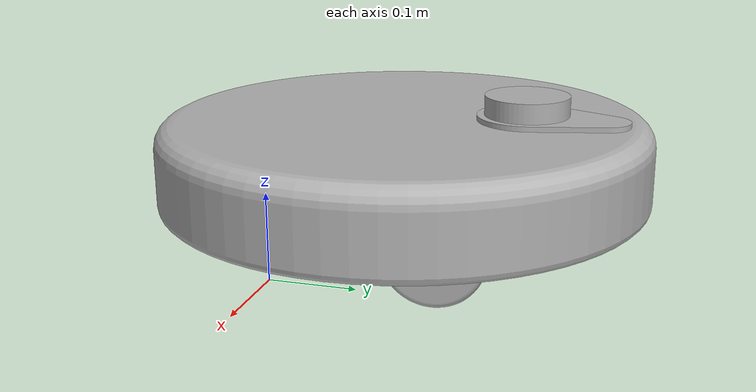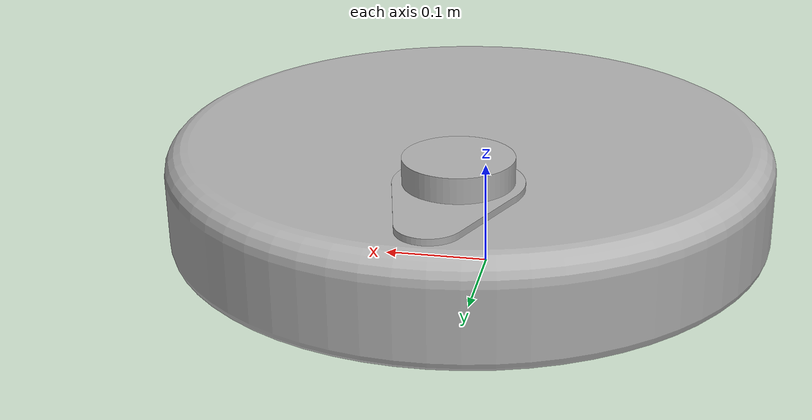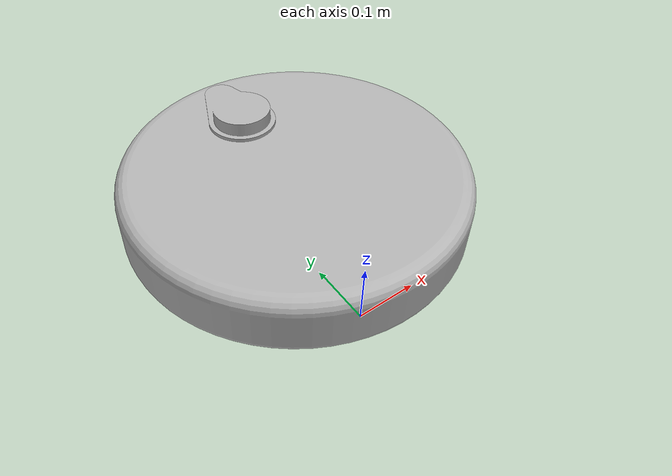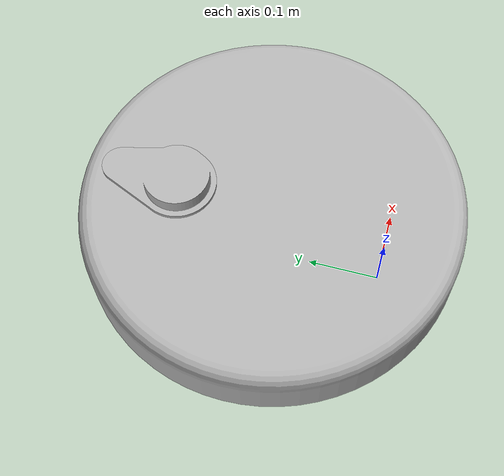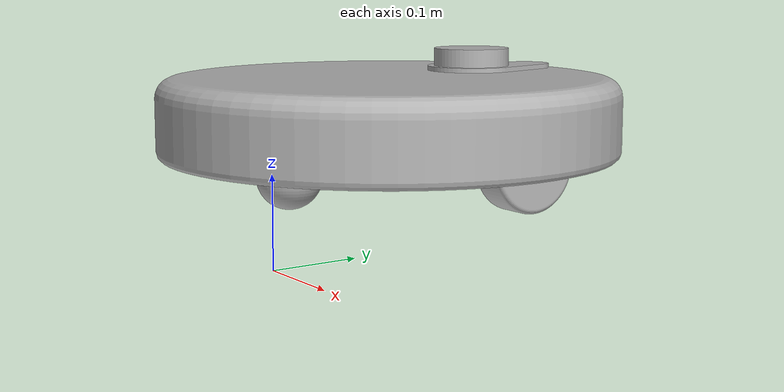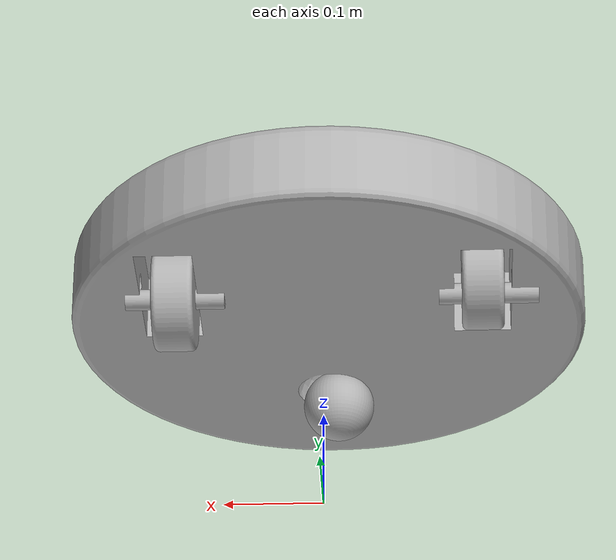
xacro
<?xml version="1.0" ?>
<robot name="BadBot" xmlns:xacro="http://www.ros.org/wiki/xacro">

<xacro:include filename="$(find BadBot_description)/urdf/materials.xacro" />
<xacro:include filename="$(find BadBot_description)/urdf/BadBot.trans" />
<xacro:include filename="$(find BadBot_description)/gazebo/BadBot_materials.gazebo" />
<xacro:include filename="$(find BadBot_description)/gazebo/BadBot_physics.gazebo" />
<xacro:include filename="$(find BadBot_description)/gazebo/BadBot_plugins.gazebo" />
<link name="base_link">
  <inertial>
    <origin xyz="-0.016271579372150208 0.1417094158489788 0.1370115013532809" rpy="0 0 0"/>
    <mass value="28.855052709016757"/>
    <inertia ixx="0.480495" iyy="0.451805" izz="0.897614" ixy="0.0" iyz="-0.001119" ixz="0.0"/>
  </inertial>
  <visual>
    <origin xyz="0 0 0" rpy="0 0 0"/>
    <geometry>
      <mesh filename="package://BadBot_description/meshes/base_link.stl" scale="0.001 0.001 0.001"/>
    </geometry>
    <material name="silver"/>
  </visual>
  <collision>
    <origin xyz="0 0 0" rpy="0 0 0"/>
    <geometry>
      <mesh filename="package://BadBot_description/meshes/base_link.stl" scale="0.001 0.001 0.001"/>
    </geometry>
  </collision>
</link>

<link name="caster_wheel_1">
  <inertial>
    <origin xyz="4.2062784975580025e-07 1.9035339363093762e-07 -1.0802124120190548e-07" rpy="0 0 0"/>
    <mass value="1.4008361642356892"/>
    <inertia ixx="0.000686" iyy="0.000686" izz="0.000686" ixy="-0.0" iyz="-0.0" ixz="-0.0"/>
  </inertial>
  <visual>
    <origin xyz="0.016272 -0.029802 -0.093867" rpy="0 0 0"/>
    <geometry>
      <mesh filename="package://BadBot_description/meshes/caster_wheel_1.stl" scale="0.001 0.001 0.001"/>
    </geometry>
    <material name="silver"/>
  </visual>
  <collision>
    <origin xyz="0.016272 -0.029802 -0.093867" rpy="0 0 0"/>
    <geometry>
      <mesh filename="package://BadBot_description/meshes/caster_wheel_1.stl" scale="0.001 0.001 0.001"/>
    </geometry>
  </collision>
</link>

<link name="right_wheel_1">
  <inertial>
    <origin xyz="4.206278496621252e-07 -1.21080121928685e-07 -1.0802128527775956e-07" rpy="0 0 0"/>
    <mass value="0.38540002551002456"/>
    <inertia ixx="0.000496" iyy="0.000299" izz="0.000299" ixy="-0.0" iyz="-0.0" ixz="-0.0"/>
  </inertial>
  <visual>
    <origin xyz="-0.133728 -0.221391 -0.108867" rpy="0 0 0"/>
    <geometry>
      <mesh filename="package://BadBot_description/meshes/right_wheel_1.stl" scale="0.001 0.001 0.001"/>
    </geometry>
    <material name="silver"/>
  </visual>
  <collision>
    <origin xyz="-0.133728 -0.221391 -0.108867" rpy="0 0 0"/>
    <geometry>
      <mesh filename="package://BadBot_description/meshes/right_wheel_1.stl" scale="0.001 0.001 0.001"/>
    </geometry>
  </collision>
</link>

<link name="right_wheel_axle_1">
  <inertial>
    <origin xyz="-0.04749957937215024 -1.2108012187317385e-07 -1.080212411880277e-07" rpy="0 0 0"/>
    <mass value="0.23876104167282425"/>
    <inertia ixx="1.2e-05" iyy="0.000186" izz="0.000186" ixy="0.0" iyz="-0.0" ixz="0.0"/>
  </inertial>
  <visual>
    <origin xyz="-0.181228 -0.221391 -0.108867" rpy="0 0 0"/>
    <geometry>
      <mesh filename="package://BadBot_description/meshes/right_wheel_axle_1.stl" scale="0.001 0.001 0.001"/>
    </geometry>
    <material name="silver"/>
  </visual>
  <collision>
    <origin xyz="-0.181228 -0.221391 -0.108867" rpy="0 0 0"/>
    <geometry>
      <mesh filename="package://BadBot_description/meshes/right_wheel_axle_1.stl" scale="0.001 0.001 0.001"/>
    </geometry>
  </collision>
</link>

<link name="left_wheel_1">
  <inertial>
    <origin xyz="4.2062784980090306e-07 -1.2108012190092943e-07 -1.0802128526388177e-07" rpy="0 0 0"/>
    <mass value="0.38540002551002467"/>
    <inertia ixx="0.000496" iyy="0.000299" izz="0.000299" ixy="-0.0" iyz="0.0" ixz="0.0"/>
  </inertial>
  <visual>
    <origin xyz="0.166272 -0.221391 -0.108867" rpy="0 0 0"/>
    <geometry>
      <mesh filename="package://BadBot_description/meshes/left_wheel_1.stl" scale="0.001 0.001 0.001"/>
    </geometry>
    <material name="silver"/>
  </visual>
  <collision>
    <origin xyz="0.166272 -0.221391 -0.108867" rpy="0 0 0"/>
    <geometry>
      <mesh filename="package://BadBot_description/meshes/left_wheel_1.stl" scale="0.001 0.001 0.001"/>
    </geometry>
  </collision>
</link>

<link name="_left_wheel_axle_1">
  <inertial>
    <origin xyz="-0.04749957937215003 -1.2108012209521846e-07 -1.0802124131292778e-07" rpy="0 0 0"/>
    <mass value="0.23876104167282444"/>
    <inertia ixx="1.2e-05" iyy="0.000186" izz="0.000186" ixy="0.0" iyz="-0.0" ixz="0.0"/>
  </inertial>
  <visual>
    <origin xyz="0.118772 -0.221391 -0.108867" rpy="0 0 0"/>
    <geometry>
      <mesh filename="package://BadBot_description/meshes/_left_wheel_axle_1.stl" scale="0.001 0.001 0.001"/>
    </geometry>
    <material name="silver"/>
  </visual>
  <collision>
    <origin xyz="0.118772 -0.221391 -0.108867" rpy="0 0 0"/>
    <geometry>
      <mesh filename="package://BadBot_description/meshes/_left_wheel_axle_1.stl" scale="0.001 0.001 0.001"/>
    </geometry>
  </collision>
</link>

<link name="lidar_v1_1">
  <inertial>
    <origin xyz="-0.004865441389214329 0.1410900178145767 0.016766645484714182" rpy="0 0 0"/>
    <mass value="0.3543299620873657"/>
    <inertia ixx="0.000474" iyy="0.000229" izz="0.000616" ixy="-2.3e-05" iyz="3.1e-05" ixz="3e-06"/>
  </inertial>
  <visual>
    <origin xyz="0.016272 -0.146391 -0.178867" rpy="0 0 0"/>
    <geometry>
      <mesh filename="package://BadBot_description/meshes/lidar_v1_1.stl" scale="0.001 0.001 0.001"/>
    </geometry>
    <material name="silver"/>
  </visual>
  <collision>
    <origin xyz="0.016272 -0.146391 -0.178867" rpy="0 0 0"/>
    <geometry>
      <mesh filename="package://BadBot_description/meshes/lidar_v1_1.stl" scale="0.001 0.001 0.001"/>
    </geometry>
  </collision>
</link>

<joint name="Rev7" type="continuous">
  <origin xyz="-0.016272 0.029802 0.093867" rpy="0 0 0"/>
  <parent link="base_link"/>
  <child link="caster_wheel_1"/>
  <axis xyz="0.0 0.0 -1.0"/>
</joint>

<joint name="Rev8" type="continuous">
  <origin xyz="-0.0475 0.0 0.0" rpy="0 0 0"/>
  <parent link="right_wheel_axle_1"/>
  <child link="right_wheel_1"/>
  <axis xyz="-1.0 0.0 0.0"/>
</joint>

<joint name="Rigid9" type="fixed">
  <origin xyz="0.181228 0.221391 0.108867" rpy="0 0 0"/>
  <parent link="base_link"/>
  <child link="right_wheel_axle_1"/>
</joint>

<joint name="Rev10" type="continuous">
  <origin xyz="-0.0475 0.0 0.0" rpy="0 0 0"/>
  <parent link="_left_wheel_axle_1"/>
  <child link="left_wheel_1"/>
  <axis xyz="-1.0 0.0 0.0"/>
</joint>

<joint name="Rigid11" type="fixed">
  <origin xyz="-0.118772 0.221391 0.108867" rpy="0 0 0"/>
  <parent link="base_link"/>
  <child link="_left_wheel_axle_1"/>
</joint>

<joint name="Rigid12" type="fixed">
  <origin xyz="-0.016272 0.146391 0.178867" rpy="0 0 0"/>
  <parent link="base_link"/>
  <child link="lidar_v1_1"/>
</joint>

</robot>

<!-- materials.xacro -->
<robot name="BadBot" xmlns:xacro="http://www.ros.org/wiki/xacro" >

<material name="silver">
  <color rgba="0.700 0.700 0.700 1.000"/>
</material>

</robot>

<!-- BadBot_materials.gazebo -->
<robot name="BadBot" xmlns:xacro="http://www.ros.org/wiki/xacro" >

<xacro:property name="body_color" value="Gazebo/Blue" />
<xacro:property name="wheel_color" value="Gazebo/Black" />
<xacro:property name="caster_color" value="Gazebo/Grey" />
<xacro:property name="lidar_color" value="Gazebo/Red" />

<gazebo reference="base_link">
  <material>${body_color}</material>
</gazebo>

<gazebo reference="caster_wheel_1">
  <material>${caster_color}</material>
</gazebo>

<gazebo reference="right_wheel_1">
  <material>${wheel_color}</material>
</gazebo>

<gazebo reference="right_wheel_axle_1">
  <material>${caster_color}</material>
</gazebo>

<gazebo reference="left_wheel_1">
  <material>${wheel_color}</material>
</gazebo>

<gazebo reference="_left_wheel_axle_1">
  <material>${caster_color}</material>
</gazebo>

<gazebo reference="lidar_v1_1">
  <material>${lidar_color}</material>
</gazebo>

</robot>
